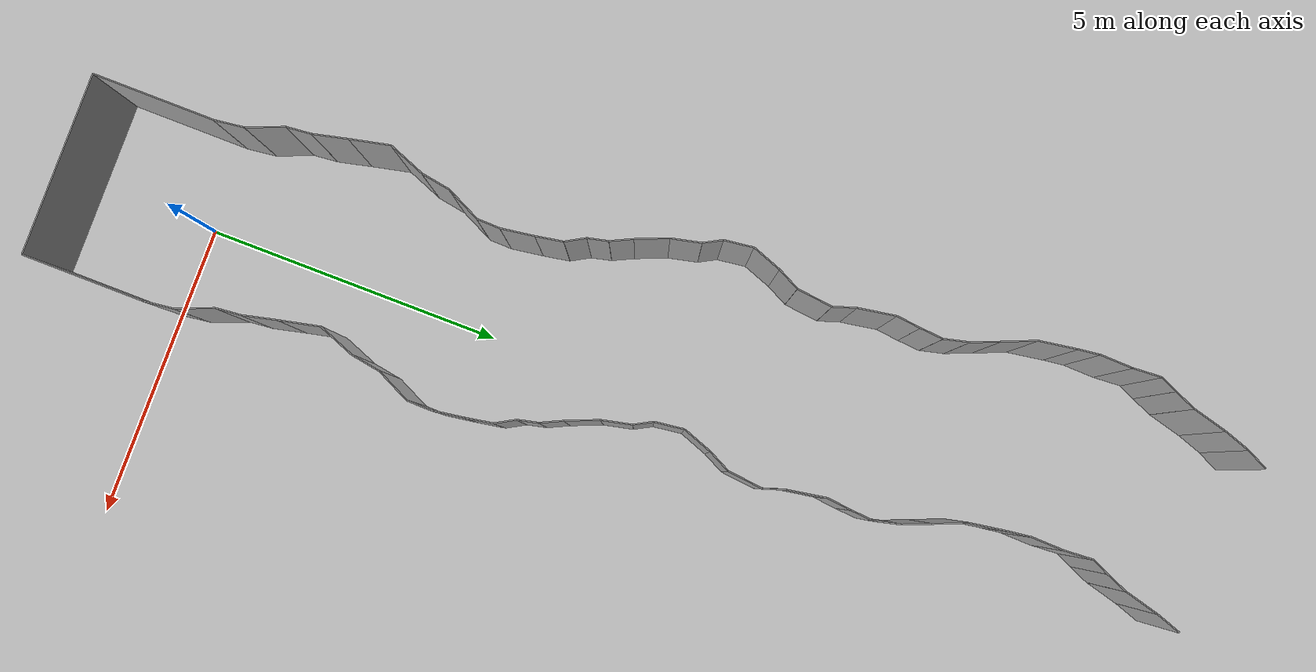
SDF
<sdf version="1.6">
 <world name="default">
  <model name="ground_plane">
   <static>1</static>
   <link name="link">
    <collision name="collision">
     <geometry><plane><normal>0 0 1</normal><size>200 200</size></plane></geometry>
     <surface><friction><ode><mu>100</mu><mu2>50</mu2></ode></friction></surface>
    </collision>
    <visual name="visual">
     <cast_shadows>0</cast_shadows>
     <geometry><plane><normal>0 0 1</normal><size>200 200</size></plane></geometry>
     <material>
      <script><uri>file://media/materials/scripts/gazebo.material</uri><name>Gazebo/Grey</name></script>
     </material>
    </visual>
   </link>
   <pose>0 100 0 0 -0 0</pose>
  </model>
  <model name="wall_back">
   <static>1</static>
   <pose>0.0 -2 2 0.0 0 0.0</pose>
   <link name="link">
    <collision name="collision"><geometry><box><size>3 0.02 4</size></box></geometry></collision>
    <visual name="visual">
     <material>
      <script><name>Gazebo/Grey</name><uri>file://media/materials/scripts/gazebo.material</uri></script>
     </material>
     <geometry><box><size>3 0.02 4</size></box></geometry>
    </visual>
   </link>
  </model>
  <model name="wall_left">
   <static>1</static>
   <pose>1.5 -1 2 0 0 0.00</pose>
   <link name="link">
    <collision name="collision"><geometry><box><size>0.02 2 4</size></box></geometry></collision>
    <visual name="visual">
     <material>
      <script><name>Gazebo/Grey</name><uri>file://media/materials/scripts/gazebo.material</uri></script>
     </material>
     <geometry><box><size>0.02 2 4</size></box></geometry>
    </visual>
   </link>
  </model>
  <model name="wall_right">
   <static>1</static>
   <pose>-1.5 -1 2 0 0 0.00</pose>
   <link name="link">
    <collision name="collision"><geometry><box><size>0.02 2 4</size></box></geometry></collision>
    <visual name="visual">
     <material>
      <script><name>Gazebo/Grey</name><uri>file://media/materials/scripts/gazebo.material</uri></script>
     </material>
     <geometry><box><size>0.02 2 4</size></box></geometry>
    </visual>
   </link>
  </model>
  <model name="wall_0">
   <static>1</static>
   <pose>-1.5307311687963603 0.24682007867175873 2 0 0 0.12387091126973554</pose>
   <link name="link">
    <collision name="collision"><geometry><box><size>0.02 0.497451730206 4</size></box></geometry></collision>
    <visual name="visual">
     <material>
      <script><name>Gazebo/Grey</name><uri>file://media/materials/scripts/gazebo.material</uri></script>
     </material>
     <geometry><box><size>0.02 0.497451730206 4</size></box></geometry>
    </visual>
   </link>
  </model>
  <model name="wall_1">
   <static>1</static>
   <pose>1.4692688312036397 0.24682007867175873 2 0 0 0.12387091126973554</pose>
   <link name="link">
    <collision name="collision"><geometry><box><size>0.02 0.497451730206 4</size></box></geometry></collision>
    <visual name="visual">
     <material>
      <script><name>Gazebo/Grey</name><uri>file://media/materials/scripts/gazebo.material</uri></script>
     </material>
     <geometry><box><size>0.02 0.497451730206 4</size></box></geometry>
    </visual>
   </link>
  </model>
  <model name="wall_2">
   <static>1</static>
   <pose>-1.680255695739214 0.788827672844604 2 0 0 0.38260249823705095</pose>
   <link name="link">
    <collision name="collision"><geometry><box><size>0.02 0.63638834448 4</size></box></geometry></collision>
    <visual name="visual">
     <material>
      <script><name>Gazebo/Grey</name><uri>file://media/materials/scripts/gazebo.material</uri></script>
     </material>
     <geometry><box><size>0.02 0.63638834448 4</size></box></geometry>
    </visual>
   </link>
  </model>
  <model name="wall_3">
   <static>1</static>
   <pose>1.319744304260786 0.788827672844604 2 0 0 0.38260249823705095</pose>
   <link name="link">
    <collision name="collision"><geometry><box><size>0.02 0.63638834448 4</size></box></geometry></collision>
    <visual name="visual">
     <material>
      <script><name>Gazebo/Grey</name><uri>file://media/materials/scripts/gazebo.material</uri></script>
     </material>
     <geometry><box><size>0.02 0.63638834448 4</size></box></geometry>
    </visual>
   </link>
  </model>
  <model name="wall_4">
   <static>1</static>
   <pose>-1.8189245630661273 1.2884636229853923 2 0 0 0.09691073778679689</pose>
   <link name="link">
    <collision name="collision"><geometry><box><size>0.02 0.410824528439 4</size></box></geometry></collision>
    <visual name="visual">
     <material>
      <script><name>Gazebo/Grey</name><uri>file://media/materials/scripts/gazebo.material</uri></script>
     </material>
     <geometry><box><size>0.02 0.410824528439 4</size></box></geometry>
    </visual>
   </link>
  </model>
  <model name="wall_5">
   <static>1</static>
   <pose>1.1810754369338727 1.2884636229853923 2 0 0 0.09691073778679689</pose>
   <link name="link">
    <collision name="collision"><geometry><box><size>0.02 0.410824528439 4</size></box></geometry></collision>
    <visual name="visual">
     <material>
      <script><name>Gazebo/Grey</name><uri>file://media/materials/scripts/gazebo.material</uri></script>
     </material>
     <geometry><box><size>0.02 0.410824528439 4</size></box></geometry>
    </visual>
   </link>
  </model>
  <model name="wall_6">
   <static>1</static>
   <pose>-1.9046529150720921 1.7745180656748016 2 0 0 0.22971943522785104</pose>
   <link name="link">
    <collision name="collision"><geometry><box><size>0.02 0.578406572155 4</size></box></geometry></collision>
    <visual name="visual">
     <material>
      <script><name>Gazebo/Grey</name><uri>file://media/materials/scripts/gazebo.material</uri></script>
     </material>
     <geometry><box><size>0.02 0.578406572155 4</size></box></geometry>
    </visual>
   </link>
  </model>
  <model name="wall_7">
   <static>1</static>
   <pose>1.0953470849279079 1.7745180656748016 2 0 0 0.22971943522785104</pose>
   <link name="link">
    <collision name="collision"><geometry><box><size>0.02 0.578406572155 4</size></box></geometry></collision>
    <visual name="visual">
     <material>
      <script><name>Gazebo/Grey</name><uri>file://media/materials/scripts/gazebo.material</uri></script>
     </material>
     <geometry><box><size>0.02 0.578406572155 4</size></box></geometry>
    </visual>
   </link>
  </model>
  <model name="wall_8">
   <static>1</static>
   <pose>-2.0421624320793557 2.3812499141331216 2 0 0 0.21692869439451723</pose>
   <link name="link">
    <collision name="collision"><geometry><box><size>0.02 0.665857315215 4</size></box></geometry></collision>
    <visual name="visual">
     <material>
      <script><name>Gazebo/Grey</name><uri>file://media/materials/scripts/gazebo.material</uri></script>
     </material>
     <geometry><box><size>0.02 0.665857315215 4</size></box></geometry>
    </visual>
   </link>
  </model>
  <model name="wall_9">
   <static>1</static>
   <pose>0.9578375679206443 2.3812499141331216 2 0 0 0.21692869439451723</pose>
   <link name="link">
    <collision name="collision"><geometry><box><size>0.02 0.665857315215 4</size></box></geometry></collision>
    <visual name="visual">
     <material>
      <script><name>Gazebo/Grey</name><uri>file://media/materials/scripts/gazebo.material</uri></script>
     </material>
     <geometry><box><size>0.02 0.665857315215 4</size></box></geometry>
    </visual>
   </link>
  </model>
  <model name="wall_10">
   <static>1</static>
   <pose>-1.9958734557599482 3.0080293722450535 2 0 0 -0.37272113188731054</pose>
   <link name="link">
    <collision name="collision"><geometry><box><size>0.02 0.647784166357 4</size></box></geometry></collision>
    <visual name="visual">
     <material>
      <script><name>Gazebo/Grey</name><uri>file://media/materials/scripts/gazebo.material</uri></script>
     </material>
     <geometry><box><size>0.02 0.647784166357 4</size></box></geometry>
    </visual>
   </link>
  </model>
  <model name="wall_11">
   <static>1</static>
   <pose>1.0041265442400518 3.0080293722450535 2 0 0 -0.37272113188731054</pose>
   <link name="link">
    <collision name="collision"><geometry><box><size>0.02 0.647784166357 4</size></box></geometry></collision>
    <visual name="visual">
     <material>
      <script><name>Gazebo/Grey</name><uri>file://media/materials/scripts/gazebo.material</uri></script>
     </material>
     <geometry><box><size>0.02 0.647784166357 4</size></box></geometry>
    </visual>
   </link>
  </model>
  <model name="wall_12">
   <static>1</static>
   <pose>-1.8371151136807784 3.5522359761309676 2 0 0 -0.16670145723548743</pose>
   <link name="link">
    <collision name="collision"><geometry><box><size>0.02 0.491925306932 4</size></box></geometry></collision>
    <visual name="visual">
     <material>
      <script><name>Gazebo/Grey</name><uri>file://media/materials/scripts/gazebo.material</uri></script>
     </material>
     <geometry><box><size>0.02 0.491925306932 4</size></box></geometry>
    </visual>
   </link>
  </model>
  <model name="wall_13">
   <static>1</static>
   <pose>1.1628848863192216 3.5522359761309676 2 0 0 -0.16670145723548743</pose>
   <link name="link">
    <collision name="collision"><geometry><box><size>0.02 0.491925306932 4</size></box></geometry></collision>
    <visual name="visual">
     <material>
      <script><name>Gazebo/Grey</name><uri>file://media/materials/scripts/gazebo.material</uri></script>
     </material>
     <geometry><box><size>0.02 0.491925306932 4</size></box></geometry>
    </visual>
   </link>
  </model>
  <model name="wall_14">
   <static>1</static>
   <pose>-1.6612287422368008 4.074180786566131 2 0 0 -0.45032510420682703</pose>
   <link name="link">
    <collision name="collision"><geometry><box><size>0.02 0.620659940553 4</size></box></geometry></collision>
    <visual name="visual">
     <material>
      <script><name>Gazebo/Grey</name><uri>file://media/materials/scripts/gazebo.material</uri></script>
     </material>
     <geometry><box><size>0.02 0.620659940553 4</size></box></geometry>
    </visual>
   </link>
  </model>
  <model name="wall_15">
   <static>1</static>
   <pose>1.3387712577631992 4.074180786566131 2 0 0 -0.45032510420682703</pose>
   <link name="link">
    <collision name="collision"><geometry><box><size>0.02 0.620659940553 4</size></box></geometry></collision>
    <visual name="visual">
     <material>
      <script><name>Gazebo/Grey</name><uri>file://media/materials/scripts/gazebo.material</uri></script>
     </material>
     <geometry><box><size>0.02 0.620659940553 4</size></box></geometry>
    </visual>
   </link>
  </model>
  <model name="wall_16">
   <static>1</static>
   <pose>-1.5216878284495352 4.546500633476221 2 0 0 -0.023150788291668885</pose>
   <link name="link">
    <collision name="collision"><geometry><box><size>0.02 0.385959469921 4</size></box></geometry></collision>
    <visual name="visual">
     <material>
      <script><name>Gazebo/Grey</name><uri>file://media/materials/scripts/gazebo.material</uri></script>
     </material>
     <geometry><box><size>0.02 0.385959469921 4</size></box></geometry>
    </visual>
   </link>
  </model>
  <model name="wall_17">
   <static>1</static>
   <pose>1.4783121715504648 4.546500633476221 2 0 0 -0.023150788291668885</pose>
   <link name="link">
    <collision name="collision"><geometry><box><size>0.02 0.385959469921 4</size></box></geometry></collision>
    <visual name="visual">
     <material>
      <script><name>Gazebo/Grey</name><uri>file://media/materials/scripts/gazebo.material</uri></script>
     </material>
     <geometry><box><size>0.02 0.385959469921 4</size></box></geometry>
    </visual>
   </link>
  </model>
  <model name="wall_18">
   <static>1</static>
   <pose>-1.5572613715143004 5.01056779444807 2 0 0 0.14661643700674581</pose>
   <link name="link">
    <collision name="collision"><geometry><box><size>0.02 0.548159451793 4</size></box></geometry></collision>
    <visual name="visual">
     <material>
      <script><name>Gazebo/Grey</name><uri>file://media/materials/scripts/gazebo.material</uri></script>
     </material>
     <geometry><box><size>0.02 0.548159451793 4</size></box></geometry>
    </visual>
   </link>
  </model>
  <model name="wall_19">
   <static>1</static>
   <pose>1.4427386284856996 5.01056779444807 2 0 0 0.14661643700674581</pose>
   <link name="link">
    <collision name="collision"><geometry><box><size>0.02 0.548159451793 4</size></box></geometry></collision>
    <visual name="visual">
     <material>
      <script><name>Gazebo/Grey</name><uri>file://media/materials/scripts/gazebo.material</uri></script>
     </material>
     <geometry><box><size>0.02 0.548159451793 4</size></box></geometry>
    </visual>
   </link>
  </model>
  <model name="wall_20">
   <static>1</static>
   <pose>-1.6368601609359468 5.505053012077374 2 0 0 0.1752973904942411</pose>
   <link name="link">
    <collision name="collision"><geometry><box><size>0.02 0.453644387128 4</size></box></geometry></collision>
    <visual name="visual">
     <material>
      <script><name>Gazebo/Grey</name><uri>file://media/materials/scripts/gazebo.material</uri></script>
     </material>
     <geometry><box><size>0.02 0.453644387128 4</size></box></geometry>
    </visual>
   </link>
  </model>
  <model name="wall_21">
   <static>1</static>
   <pose>1.3631398390640532 5.505053012077374 2 0 0 0.1752973904942411</pose>
   <link name="link">
    <collision name="collision"><geometry><box><size>0.02 0.453644387128 4</size></box></geometry></collision>
    <visual name="visual">
     <material>
      <script><name>Gazebo/Grey</name><uri>file://media/materials/scripts/gazebo.material</uri></script>
     </material>
     <geometry><box><size>0.02 0.453644387128 4</size></box></geometry>
    </visual>
   </link>
  </model>
  <model name="wall_22">
   <static>1</static>
   <pose>-1.7660356316071537 5.885742513176066 2 0 0 0.5177408707553595</pose>
   <link name="link">
    <collision name="collision"><geometry><box><size>0.02 0.36215047259 4</size></box></geometry></collision>
    <visual name="visual">
     <material>
      <script><name>Gazebo/Grey</name><uri>file://media/materials/scripts/gazebo.material</uri></script>
     </material>
     <geometry><box><size>0.02 0.36215047259 4</size></box></geometry>
    </visual>
   </link>
  </model>
  <model name="wall_23">
   <static>1</static>
   <pose>1.2339643683928463 5.885742513176066 2 0 0 0.5177408707553595</pose>
   <link name="link">
    <collision name="collision"><geometry><box><size>0.02 0.36215047259 4</size></box></geometry></collision>
    <visual name="visual">
     <material>
      <script><name>Gazebo/Grey</name><uri>file://media/materials/scripts/gazebo.material</uri></script>
     </material>
     <geometry><box><size>0.02 0.36215047259 4</size></box></geometry>
    </visual>
   </link>
  </model>
  <model name="wall_24">
   <static>1</static>
   <pose>-1.894587063273864 6.20996375331709 2 0 0 0.22920815441649556</pose>
   <link name="link">
    <collision name="collision"><geometry><box><size>0.02 0.342718896747 4</size></box></geometry></collision>
    <visual name="visual">
     <material>
      <script><name>Gazebo/Grey</name><uri>file://media/materials/scripts/gazebo.material</uri></script>
     </material>
     <geometry><box><size>0.02 0.342718896747 4</size></box></geometry>
    </visual>
   </link>
  </model>
  <model name="wall_25">
   <static>1</static>
   <pose>1.105412936726136 6.20996375331709 2 0 0 0.22920815441649556</pose>
   <link name="link">
    <collision name="collision"><geometry><box><size>0.02 0.342718896747 4</size></box></geometry></collision>
    <visual name="visual">
     <material>
      <script><name>Gazebo/Grey</name><uri>file://media/materials/scripts/gazebo.material</uri></script>
     </material>
     <geometry><box><size>0.02 0.342718896747 4</size></box></geometry>
    </visual>
   </link>
  </model>
  <model name="wall_26">
   <static>1</static>
   <pose>-2.017375926076146 6.551261584629678 2 0 0 0.44814084864739206</pose>
   <link name="link">
    <collision name="collision"><geometry><box><size>0.02 0.387060632929 4</size></box></geometry></collision>
    <visual name="visual">
     <material>
      <script><name>Gazebo/Grey</name><uri>file://media/materials/scripts/gazebo.material</uri></script>
     </material>
     <geometry><box><size>0.02 0.387060632929 4</size></box></geometry>
    </visual>
   </link>
  </model>
  <model name="wall_27">
   <static>1</static>
   <pose>0.9826240739238541 6.551261584629678 2 0 0 0.44814084864739206</pose>
   <link name="link">
    <collision name="collision"><geometry><box><size>0.02 0.387060632929 4</size></box></geometry></collision>
    <visual name="visual">
     <material>
      <script><name>Gazebo/Grey</name><uri>file://media/materials/scripts/gazebo.material</uri></script>
     </material>
     <geometry><box><size>0.02 0.387060632929 4</size></box></geometry>
    </visual>
   </link>
  </model>
  <model name="wall_28">
   <static>1</static>
   <pose>-2.206541215022592 6.983666569921456 2 0 0 0.38755839696092276</pose>
   <link name="link">
    <collision name="collision"><geometry><box><size>0.02 0.557302525421 4</size></box></geometry></collision>
    <visual name="visual">
     <material>
      <script><name>Gazebo/Grey</name><uri>file://media/materials/scripts/gazebo.material</uri></script>
     </material>
     <geometry><box><size>0.02 0.557302525421 4</size></box></geometry>
    </visual>
   </link>
  </model>
  <model name="wall_29">
   <static>1</static>
   <pose>0.7934587849774082 6.983666569921456 2 0 0 0.38755839696092276</pose>
   <link name="link">
    <collision name="collision"><geometry><box><size>0.02 0.557302525421 4</size></box></geometry></collision>
    <visual name="visual">
     <material>
      <script><name>Gazebo/Grey</name><uri>file://media/materials/scripts/gazebo.material</uri></script>
     </material>
     <geometry><box><size>0.02 0.557302525421 4</size></box></geometry>
    </visual>
   </link>
  </model>
  <model name="wall_30">
   <static>1</static>
   <pose>-2.367312638487156 7.487475205102649 2 0 0 0.22189786602542222</pose>
   <link name="link">
    <collision name="collision"><geometry><box><size>0.02 0.504004755475 4</size></box></geometry></collision>
    <visual name="visual">
     <material>
      <script><name>Gazebo/Grey</name><uri>file://media/materials/scripts/gazebo.material</uri></script>
     </material>
     <geometry><box><size>0.02 0.504004755475 4</size></box></geometry>
    </visual>
   </link>
  </model>
  <model name="wall_31">
   <static>1</static>
   <pose>0.6326873615128439 7.487475205102649 2 0 0 0.22189786602542222</pose>
   <link name="link">
    <collision name="collision"><geometry><box><size>0.02 0.504004755475 4</size></box></geometry></collision>
    <visual name="visual">
     <material>
      <script><name>Gazebo/Grey</name><uri>file://media/materials/scripts/gazebo.material</uri></script>
     </material>
     <geometry><box><size>0.02 0.504004755475 4</size></box></geometry>
    </visual>
   </link>
  </model>
  <model name="wall_32">
   <static>1</static>
   <pose>-2.5020238359366775 7.877625891850845 2 0 0 0.5021530593760419</pose>
   <link name="link">
    <collision name="collision"><geometry><box><size>0.02 0.329307636341 4</size></box></geometry></collision>
    <visual name="visual">
     <material>
      <script><name>Gazebo/Grey</name><uri>file://media/materials/scripts/gazebo.material</uri></script>
     </material>
     <geometry><box><size>0.02 0.329307636341 4</size></box></geometry>
    </visual>
   </link>
  </model>
  <model name="wall_33">
   <static>1</static>
   <pose>0.49797616406332246 7.877625891850845 2 0 0 0.5021530593760419</pose>
   <link name="link">
    <collision name="collision"><geometry><box><size>0.02 0.329307636341 4</size></box></geometry></collision>
    <visual name="visual">
     <material>
      <script><name>Gazebo/Grey</name><uri>file://media/materials/scripts/gazebo.material</uri></script>
     </material>
     <geometry><box><size>0.02 0.329307636341 4</size></box></geometry>
    </visual>
   </link>
  </model>
  <model name="wall_34">
   <static>1</static>
   <pose>-2.612442737876426 8.264369004179834 2 0 0 0.12787375578342494</pose>
   <link name="link">
    <collision name="collision"><geometry><box><size>0.02 0.488823279136 4</size></box></geometry></collision>
    <visual name="visual">
     <material>
      <script><name>Gazebo/Grey</name><uri>file://media/materials/scripts/gazebo.material</uri></script>
     </material>
     <geometry><box><size>0.02 0.488823279136 4</size></box></geometry>
    </visual>
   </link>
  </model>
  <model name="wall_35">
   <static>1</static>
   <pose>0.3875572621235741 8.264369004179834 2 0 0 0.12787375578342494</pose>
   <link name="link">
    <collision name="collision"><geometry><box><size>0.02 0.488823279136 4</size></box></geometry></collision>
    <visual name="visual">
     <material>
      <script><name>Gazebo/Grey</name><uri>file://media/materials/scripts/gazebo.material</uri></script>
     </material>
     <geometry><box><size>0.02 0.488823279136 4</size></box></geometry>
    </visual>
   </link>
  </model>
  <model name="wall_36">
   <static>1</static>
   <pose>-2.5546231025190207 8.750861470290321 2 0 0 -0.3496150232994657</pose>
   <link name="link">
    <collision name="collision"><geometry><box><size>0.02 0.519585246228 4</size></box></geometry></collision>
    <visual name="visual">
     <material>
      <script><name>Gazebo/Grey</name><uri>file://media/materials/scripts/gazebo.material</uri></script>
     </material>
     <geometry><box><size>0.02 0.519585246228 4</size></box></geometry>
    </visual>
   </link>
  </model>
  <model name="wall_37">
   <static>1</static>
   <pose>0.4453768974809793 8.750861470290321 2 0 0 -0.3496150232994657</pose>
   <link name="link">
    <collision name="collision"><geometry><box><size>0.02 0.519585246228 4</size></box></geometry></collision>
    <visual name="visual">
     <material>
      <script><name>Gazebo/Grey</name><uri>file://media/materials/scripts/gazebo.material</uri></script>
     </material>
     <geometry><box><size>0.02 0.519585246228 4</size></box></geometry>
    </visual>
   </link>
  </model>
  <model name="wall_38">
   <static>1</static>
   <pose>-2.374421227251 9.177686558201325 2 0 0 -0.4629432529449416</pose>
   <link name="link">
    <collision name="collision"><geometry><box><size>0.02 0.408494777323 4</size></box></geometry></collision>
    <visual name="visual">
     <material>
      <script><name>Gazebo/Grey</name><uri>file://media/materials/scripts/gazebo.material</uri></script>
     </material>
     <geometry><box><size>0.02 0.408494777323 4</size></box></geometry>
    </visual>
   </link>
  </model>
  <model name="wall_39">
   <static>1</static>
   <pose>0.6255787727489999 9.177686558201325 2 0 0 -0.4629432529449416</pose>
   <link name="link">
    <collision name="collision"><geometry><box><size>0.02 0.408494777323 4</size></box></geometry></collision>
    <visual name="visual">
     <material>
      <script><name>Gazebo/Grey</name><uri>file://media/materials/scripts/gazebo.material</uri></script>
     </material>
     <geometry><box><size>0.02 0.408494777323 4</size></box></geometry>
    </visual>
   </link>
  </model>
  <model name="wall_40">
   <static>1</static>
   <pose>-2.2512681147087266 9.656876612745306 2 0 0 -0.10732937084118686</pose>
   <link name="link">
    <collision name="collision"><geometry><box><size>0.02 0.596314040532 4</size></box></geometry></collision>
    <visual name="visual">
     <material>
      <script><name>Gazebo/Grey</name><uri>file://media/materials/scripts/gazebo.material</uri></script>
     </material>
     <geometry><box><size>0.02 0.596314040532 4</size></box></geometry>
    </visual>
   </link>
  </model>
  <model name="wall_41">
   <static>1</static>
   <pose>0.7487318852912734 9.656876612745306 2 0 0 -0.10732937084118686</pose>
   <link name="link">
    <collision name="collision"><geometry><box><size>0.02 0.596314040532 4</size></box></geometry></collision>
    <visual name="visual">
     <material>
      <script><name>Gazebo/Grey</name><uri>file://media/materials/scripts/gazebo.material</uri></script>
     </material>
     <geometry><box><size>0.02 0.596314040532 4</size></box></geometry>
    </visual>
   </link>
  </model>
  <model name="wall_42">
   <static>1</static>
   <pose>-2.279305843786663 10.13536134345769 2 0 0 0.31826703435486514</pose>
   <link name="link">
    <collision name="collision"><geometry><box><size>0.02 0.383338360484 4</size></box></geometry></collision>
    <visual name="visual">
     <material>
      <script><name>Gazebo/Grey</name><uri>file://media/materials/scripts/gazebo.material</uri></script>
     </material>
     <geometry><box><size>0.02 0.383338360484 4</size></box></geometry>
    </visual>
   </link>
  </model>
  <model name="wall_43">
   <static>1</static>
   <pose>0.7206941562133369 10.13536134345769 2 0 0 0.31826703435486514</pose>
   <link name="link">
    <collision name="collision"><geometry><box><size>0.02 0.383338360484 4</size></box></geometry></collision>
    <visual name="visual">
     <material>
      <script><name>Gazebo/Grey</name><uri>file://media/materials/scripts/gazebo.material</uri></script>
     </material>
     <geometry><box><size>0.02 0.383338360484 4</size></box></geometry>
    </visual>
   </link>
  </model>
  <model name="wall_44">
   <static>1</static>
   <pose>-2.3909150131062504 10.62686349971056 2 0 0 0.16532278568679626</pose>
   <link name="link">
    <collision name="collision"><geometry><box><size>0.02 0.627472954205 4</size></box></geometry></collision>
    <visual name="visual">
     <material>
      <script><name>Gazebo/Grey</name><uri>file://media/materials/scripts/gazebo.material</uri></script>
     </material>
     <geometry><box><size>0.02 0.627472954205 4</size></box></geometry>
    </visual>
   </link>
  </model>
  <model name="wall_45">
   <static>1</static>
   <pose>0.6090849868937496 10.62686349971056 2 0 0 0.16532278568679626</pose>
   <link name="link">
    <collision name="collision"><geometry><box><size>0.02 0.627472954205 4</size></box></geometry></collision>
    <visual name="visual">
     <material>
      <script><name>Gazebo/Grey</name><uri>file://media/materials/scripts/gazebo.material</uri></script>
     </material>
     <geometry><box><size>0.02 0.627472954205 4</size></box></geometry>
    </visual>
   </link>
  </model>
  <model name="wall_46">
   <static>1</static>
   <pose>-2.420412665573124 11.136746123564082 2 0 0 -0.10999117134003332</pose>
   <link name="link">
    <collision name="collision"><geometry><box><size>0.02 0.403284730551 4</size></box></geometry></collision>
    <visual name="visual">
     <material>
      <script><name>Gazebo/Grey</name><uri>file://media/materials/scripts/gazebo.material</uri></script>
     </material>
     <geometry><box><size>0.02 0.403284730551 4</size></box></geometry>
    </visual>
   </link>
  </model>
  <model name="wall_47">
   <static>1</static>
   <pose>0.579587334426876 11.136746123564082 2 0 0 -0.10999117134003332</pose>
   <link name="link">
    <collision name="collision"><geometry><box><size>0.02 0.403284730551 4</size></box></geometry></collision>
    <visual name="visual">
     <material>
      <script><name>Gazebo/Grey</name><uri>file://media/materials/scripts/gazebo.material</uri></script>
     </material>
     <geometry><box><size>0.02 0.403284730551 4</size></box></geometry>
    </visual>
   </link>
  </model>
  <model name="wall_48">
   <static>1</static>
   <pose>-2.3829932997251992 11.53124501559094 2 0 0 -0.0785968751931339</pose>
   <link name="link">
    <collision name="collision"><geometry><box><size>0.02 0.389352062209 4</size></box></geometry></collision>
    <visual name="visual">
     <material>
      <script><name>Gazebo/Grey</name><uri>file://media/materials/scripts/gazebo.material</uri></script>
     </material>
     <geometry><box><size>0.02 0.389352062209 4</size></box></geometry>
    </visual>
   </link>
  </model>
  <model name="wall_49">
   <static>1</static>
   <pose>0.6170067002748008 11.53124501559094 2 0 0 -0.0785968751931339</pose>
   <link name="link">
    <collision name="collision"><geometry><box><size>0.02 0.389352062209 4</size></box></geometry></collision>
    <visual name="visual">
     <material>
      <script><name>Gazebo/Grey</name><uri>file://media/materials/scripts/gazebo.material</uri></script>
     </material>
     <geometry><box><size>0.02 0.389352062209 4</size></box></geometry>
    </visual>
   </link>
  </model>
  <model name="wall_50">
   <static>1</static>
   <pose>-2.417286680858652 11.926932043225607 2 0 0 0.24112629132991498</pose>
   <link name="link">
    <collision name="collision"><geometry><box><size>0.02 0.415236934701 4</size></box></geometry></collision>
    <visual name="visual">
     <material>
      <script><name>Gazebo/Grey</name><uri>file://media/materials/scripts/gazebo.material</uri></script>
     </material>
     <geometry><box><size>0.02 0.415236934701 4</size></box></geometry>
    </visual>
   </link>
  </model>
  <model name="wall_51">
   <static>1</static>
   <pose>0.582713319141348 11.926932043225607 2 0 0 0.24112629132991498</pose>
   <link name="link">
    <collision name="collision"><geometry><box><size>0.02 0.415236934701 4</size></box></geometry></collision>
    <visual name="visual">
     <material>
      <script><name>Gazebo/Grey</name><uri>file://media/materials/scripts/gazebo.material</uri></script>
     </material>
     <geometry><box><size>0.02 0.415236934701 4</size></box></geometry>
    </visual>
   </link>
  </model>
  <model name="wall_52">
   <static>1</static>
   <pose>-2.5535793469881813 12.344934107226788 2 0 0 0.38113597257273385</pose>
   <link name="link">
    <collision name="collision"><geometry><box><size>0.02 0.466235993729 4</size></box></geometry></collision>
    <visual name="visual">
     <material>
      <script><name>Gazebo/Grey</name><uri>file://media/materials/scripts/gazebo.material</uri></script>
     </material>
     <geometry><box><size>0.02 0.466235993729 4</size></box></geometry>
    </visual>
   </link>
  </model>
  <model name="wall_53">
   <static>1</static>
   <pose>0.44642065301181866 12.344934107226788 2 0 0 0.38113597257273385</pose>
   <link name="link">
    <collision name="collision"><geometry><box><size>0.02 0.466235993729 4</size></box></geometry></collision>
    <visual name="visual">
     <material>
      <script><name>Gazebo/Grey</name><uri>file://media/materials/scripts/gazebo.material</uri></script>
     </material>
     <geometry><box><size>0.02 0.466235993729 4</size></box></geometry>
    </visual>
   </link>
  </model>
  <model name="wall_54">
   <static>1</static>
   <pose>-2.752241674904807 12.83078565006214 2 0 0 0.39375542551548837</pose>
   <link name="link">
    <collision name="collision"><geometry><box><size>0.02 0.583581656265 4</size></box></geometry></collision>
    <visual name="visual">
     <material>
      <script><name>Gazebo/Grey</name><uri>file://media/materials/scripts/gazebo.material</uri></script>
     </material>
     <geometry><box><size>0.02 0.583581656265 4</size></box></geometry>
    </visual>
   </link>
  </model>
  <model name="wall_55">
   <static>1</static>
   <pose>0.24775832509519313 12.83078565006214 2 0 0 0.39375542551548837</pose>
   <link name="link">
    <collision name="collision"><geometry><box><size>0.02 0.583581656265 4</size></box></geometry></collision>
    <visual name="visual">
     <material>
      <script><name>Gazebo/Grey</name><uri>file://media/materials/scripts/gazebo.material</uri></script>
     </material>
     <geometry><box><size>0.02 0.583581656265 4</size></box></geometry>
    </visual>
   </link>
  </model>
  <model name="wall_56">
   <static>1</static>
   <pose>-2.912442377954267 13.410218648460438 2 0 0 0.15442803563107685</pose>
   <link name="link">
    <collision name="collision"><geometry><box><size>0.02 0.627409439883 4</size></box></geometry></collision>
    <visual name="visual">
     <material>
      <script><name>Gazebo/Grey</name><uri>file://media/materials/scripts/gazebo.material</uri></script>
     </material>
     <geometry><box><size>0.02 0.627409439883 4</size></box></geometry>
    </visual>
   </link>
  </model>
  <model name="wall_57">
   <static>1</static>
   <pose>0.08755762204573303 13.410218648460438 2 0 0 0.15442803563107685</pose>
   <link name="link">
    <collision name="collision"><geometry><box><size>0.02 0.627409439883 4</size></box></geometry></collision>
    <visual name="visual">
     <material>
      <script><name>Gazebo/Grey</name><uri>file://media/materials/scripts/gazebo.material</uri></script>
     </material>
     <geometry><box><size>0.02 0.627409439883 4</size></box></geometry>
    </visual>
   </link>
  </model>
  <model name="wall_58">
   <static>1</static>
   <pose>-2.9828431748856477 13.895429289360354 2 0 0 0.12572250244429348</pose>
   <link name="link">
    <collision name="collision"><geometry><box><size>0.02 0.353266437122 4</size></box></geometry></collision>
    <visual name="visual">
     <material>
      <script><name>Gazebo/Grey</name><uri>file://media/materials/scripts/gazebo.material</uri></script>
     </material>
     <geometry><box><size>0.02 0.353266437122 4</size></box></geometry>
    </visual>
   </link>
  </model>
  <model name="wall_59">
   <static>1</static>
   <pose>0.017156825114352348 13.895429289360354 2 0 0 0.12572250244429348</pose>
   <link name="link">
    <collision name="collision"><geometry><box><size>0.02 0.353266437122 4</size></box></geometry></collision>
    <visual name="visual">
     <material>
      <script><name>Gazebo/Grey</name><uri>file://media/materials/scripts/gazebo.material</uri></script>
     </material>
     <geometry><box><size>0.02 0.353266437122 4</size></box></geometry>
    </visual>
   </link>
  </model>
  <model name="wall_60">
   <static>1</static>
   <pose>-2.9979367667694157 14.339573363887226 2 0 0 -0.026228992002993258</pose>
   <link name="link">
    <collision name="collision"><geometry><box><size>0.02 0.537994976085 4</size></box></geometry></collision>
    <visual name="visual">
     <material>
      <script><name>Gazebo/Grey</name><uri>file://media/materials/scripts/gazebo.material</uri></script>
     </material>
     <geometry><box><size>0.02 0.537994976085 4</size></box></geometry>
    </visual>
   </link>
  </model>
  <model name="wall_61">
   <static>1</static>
   <pose>0.002063233230584327 14.339573363887226 2 0 0 -0.026228992002993258</pose>
   <link name="link">
    <collision name="collision"><geometry><box><size>0.02 0.537994976085 4</size></box></geometry></collision>
    <visual name="visual">
     <material>
      <script><name>Gazebo/Grey</name><uri>file://media/materials/scripts/gazebo.material</uri></script>
     </material>
     <geometry><box><size>0.02 0.537994976085 4</size></box></geometry>
    </visual>
   </link>
  </model>
  <model name="wall_62">
   <static>1</static>
   <pose>-3.0057149963807084 14.846217144826145 2 0 0 0.06231103392728615</pose>
   <link name="link">
    <collision name="collision"><geometry><box><size>0.02 0.476402190542 4</size></box></geometry></collision>
    <visual name="visual">
     <material>
      <script><name>Gazebo/Grey</name><uri>file://media/materials/scripts/gazebo.material</uri></script>
     </material>
     <geometry><box><size>0.02 0.476402190542 4</size></box></geometry>
    </visual>
   </link>
  </model>
  <model name="wall_63">
   <static>1</static>
   <pose>-0.0057149963807083815 14.846217144826145 2 0 0 0.06231103392728615</pose>
   <link name="link">
    <collision name="collision"><geometry><box><size>0.02 0.476402190542 4</size></box></geometry></collision>
    <visual name="visual">
     <material>
      <script><name>Gazebo/Grey</name><uri>file://media/materials/scripts/gazebo.material</uri></script>
     </material>
     <geometry><box><size>0.02 0.476402190542 4</size></box></geometry>
    </visual>
   </link>
  </model>
  <model name="wall_64">
   <static>1</static>
   <pose>-2.956559282909117 15.221685198227082 2 0 0 -0.4349267296842231</pose>
   <link name="link">
    <collision name="collision"><geometry><box><size>0.02 0.30373601682 4</size></box></geometry></collision>
    <visual name="visual">
     <material>
      <script><name>Gazebo/Grey</name><uri>file://media/materials/scripts/gazebo.material</uri></script>
     </material>
     <geometry><box><size>0.02 0.30373601682 4</size></box></geometry>
    </visual>
   </link>
  </model>
  <model name="wall_65">
   <static>1</static>
   <pose>0.04344071709088304 15.221685198227082 2 0 0 -0.4349267296842231</pose>
   <link name="link">
    <collision name="collision"><geometry><box><size>0.02 0.30373601682 4</size></box></geometry></collision>
    <visual name="visual">
     <material>
      <script><name>Gazebo/Grey</name><uri>file://media/materials/scripts/gazebo.material</uri></script>
     </material>
     <geometry><box><size>0.02 0.30373601682 4</size></box></geometry>
    </visual>
   </link>
  </model>
  <model name="wall_66">
   <static>1</static>
   <pose>-2.817632588543979 15.538399330738896 2 0 0 -0.39650839443140523</pose>
   <link name="link">
    <collision name="collision"><geometry><box><size>0.02 0.388078863603 4</size></box></geometry></collision>
    <visual name="visual">
     <material>
      <script><name>Gazebo/Grey</name><uri>file://media/materials/scripts/gazebo.material</uri></script>
     </material>
     <geometry><box><size>0.02 0.388078863603 4</size></box></geometry>
    </visual>
   </link>
  </model>
  <model name="wall_67">
   <static>1</static>
   <pose>0.18236741145602098 15.538399330738896 2 0 0 -0.39650839443140523</pose>
   <link name="link">
    <collision name="collision"><geometry><box><size>0.02 0.388078863603 4</size></box></geometry></collision>
    <visual name="visual">
     <material>
      <script><name>Gazebo/Grey</name><uri>file://media/materials/scripts/gazebo.material</uri></script>
     </material>
     <geometry><box><size>0.02 0.388078863603 4</size></box></geometry>
    </visual>
   </link>
  </model>
  <model name="wall_68">
   <static>1</static>
   <pose>-2.6676843923788973 16.002955210193473 2 0 0 -0.2568648713148399</pose>
   <link name="link">
    <collision name="collision"><geometry><box><size>0.02 0.590516085349 4</size></box></geometry></collision>
    <visual name="visual">
     <material>
      <script><name>Gazebo/Grey</name><uri>file://media/materials/scripts/gazebo.material</uri></script>
     </material>
     <geometry><box><size>0.02 0.590516085349 4</size></box></geometry>
    </visual>
   </link>
  </model>
  <model name="wall_69">
   <static>1</static>
   <pose>0.3323156076211027 16.002955210193473 2 0 0 -0.2568648713148399</pose>
   <link name="link">
    <collision name="collision"><geometry><box><size>0.02 0.590516085349 4</size></box></geometry></collision>
    <visual name="visual">
     <material>
      <script><name>Gazebo/Grey</name><uri>file://media/materials/scripts/gazebo.material</uri></script>
     </material>
     <geometry><box><size>0.02 0.590516085349 4</size></box></geometry>
    </visual>
   </link>
  </model>
  <model name="wall_70">
   <static>1</static>
   <pose>-2.519185504775398 16.50198167308899 2 0 0 -0.33157110523059896</pose>
   <link name="link">
    <collision name="collision"><geometry><box><size>0.02 0.451503416063 4</size></box></geometry></collision>
    <visual name="visual">
     <material>
      <script><name>Gazebo/Grey</name><uri>file://media/materials/scripts/gazebo.material</uri></script>
     </material>
     <geometry><box><size>0.02 0.451503416063 4</size></box></geometry>
    </visual>
   </link>
  </model>
  <model name="wall_71">
   <static>1</static>
   <pose>0.48081449522460185 16.50198167308899 2 0 0 -0.33157110523059896</pose>
   <link name="link">
    <collision name="collision"><geometry><box><size>0.02 0.451503416063 4</size></box></geometry></collision>
    <visual name="visual">
     <material>
      <script><name>Gazebo/Grey</name><uri>file://media/materials/scripts/gazebo.material</uri></script>
     </material>
     <geometry><box><size>0.02 0.451503416063 4</size></box></geometry>
    </visual>
   </link>
  </model>
  <model name="wall_72">
   <static>1</static>
   <pose>-2.3576189035947546 16.893296942294064 2 0 0 -0.45980798360425457</pose>
   <link name="link">
    <collision name="collision"><geometry><box><size>0.02 0.396947442516 4</size></box></geometry></collision>
    <visual name="visual">
     <material>
      <script><name>Gazebo/Grey</name><uri>file://media/materials/scripts/gazebo.material</uri></script>
     </material>
     <geometry><box><size>0.02 0.396947442516 4</size></box></geometry>
    </visual>
   </link>
  </model>
 </world>
</sdf>
